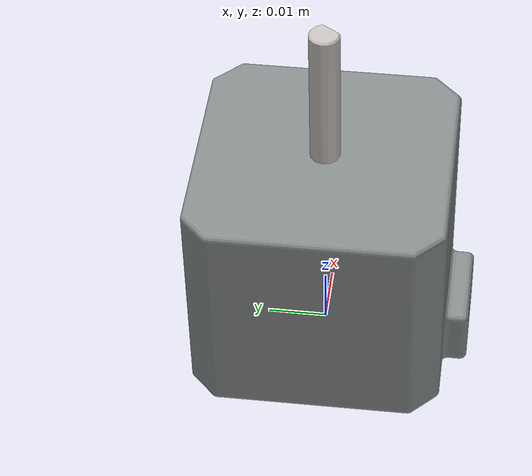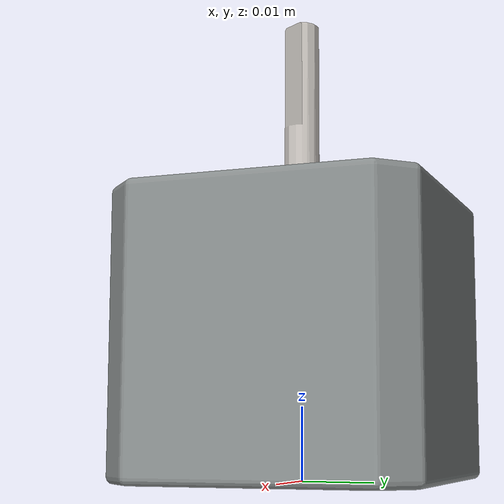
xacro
<?xml version='1.0'?>
<robot name="motorsim" xmlns:xacro="http://www.ros.org/wiki/xacro">
  <!-- Import all Gazebo-customization elements, including Gazebo colors -->
  <xacro:include filename="$(find motorsim_description)/urdf/stepmotor.gazebo" />
  <gazebo>
    <plugin name="gazebo_ros_control" filename="libgazebo_ros_control.so">
    </plugin>
  </gazebo>

  <!-- Used for fixing robot to Gazebo 'base_link' -->
  <link name="world"/>
  <joint name="fixed" type="fixed">
    <parent link="world"/>
    <child link="motorbase"/>
  </joint>

  <link name="motorbase">
    <inertial>
      <origin
        xyz="-1.73472347597681E-18 -0.000239932345629558 0.0193535938441835"
        rpy="0 0 0" />
      <mass
        value="0.522970509231658" />
      <inertia
        ixx="0.000143448111633865"
        ixy="2.61001879753111E-22"
        ixz="-2.17038528161442E-14"
        iyy="0.000140708440567143"
        iyz="-1.73806186578438E-06"
        izz="0.000150994356797971" />
    </inertial>
    <visual>
      <origin
        xyz="0 0 0"
        rpy="0 0 0" />
      <geometry>
        <mesh
          filename="$(find motorsim_description)/meshes/motorbase.STL" />
      </geometry>
      <material
        name="">
        <color
          rgba="0.529411764705882 0.549019607843137 0.549019607843137 1" />
      </material>
    </visual>
    <collision>
      <origin
        xyz="0 0 0"
        rpy="0 0 0" />
      <geometry>
        <mesh
          filename="$(find motorsim_description)/meshes/motorbase.STL" />
      </geometry>
    </collision>
  </link>
  <link
    name="shaft">
    <inertial>
      <origin
        xyz="-5.57804855252451E-05 3.64428279169306E-05 0.0306447657775446"
        rpy="0 0 0" />
      <mass
        value="0.00938942234002253" />
      <inertia
        ixx="3.02377687875403E-06"
        ixy="-4.4877695035017E-10"
        ixz="1.29981262495522E-08"
        iyy="3.0233831648333E-06"
        iyz="-8.49201066815104E-09"
        izz="2.88185683542568E-08" />
    </inertial>
    <visual>
      <origin
        xyz="0 0 0"
        rpy="0 0 0" />
      <geometry>
        <mesh
          filename="$(find motorsim_description)/meshes/shaft.STL" />
      </geometry>
      <material
        name="">
        <color
          rgba="0.776470588235294 0.756862745098039 0.737254901960784 1" />
      </material>
    </visual>
    <collision>
      <origin
        xyz="0 0 0"
        rpy="0 0 0" />
      <geometry>
        <mesh
          filename="$(find motorsim_description)/meshes/shaft.STL" />
      </geometry>
    </collision>
  </link>
  <joint
    name="motorjoint"
    type="continuous">
    <origin
      xyz="0 0 0"
      rpy="0 0 0" />
    <parent
      link="motorbase" />
    <child
      link="shaft" />
    <axis
      xyz="0 0 -1" />
  </joint>

  <transmission name="tran1">
    <type>transmission_interface/SimpleTransmission</type>
    <joint name="motorjoint">
      <hardwareInterface>hardware_interface/VelocityJointInterface</hardwareInterface>
    </joint>
    <actuator name="motor1">
      <hardwareInterface>hardware_interface/VelocityJointInterface</hardwareInterface>
      <mechanicalReduction>1</mechanicalReduction>
    </actuator>
  </transmission>

</robot>
